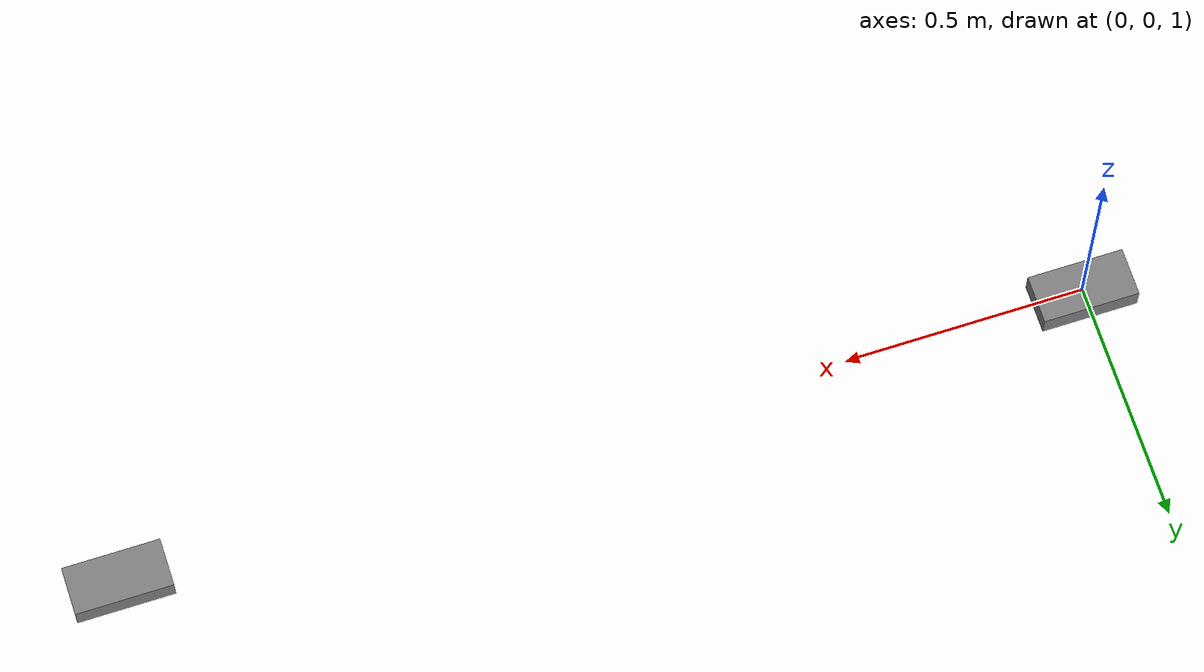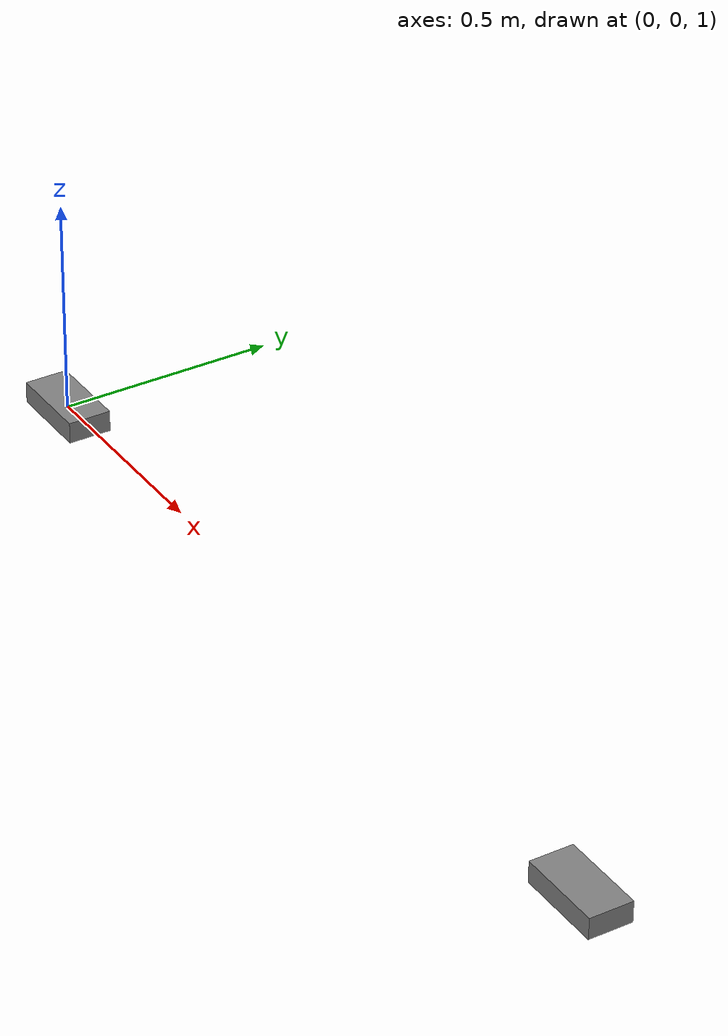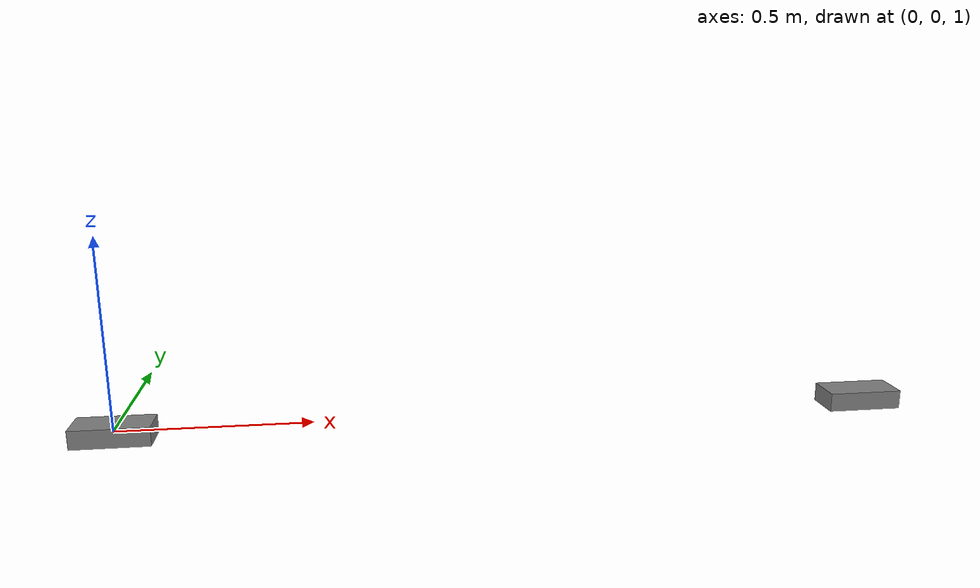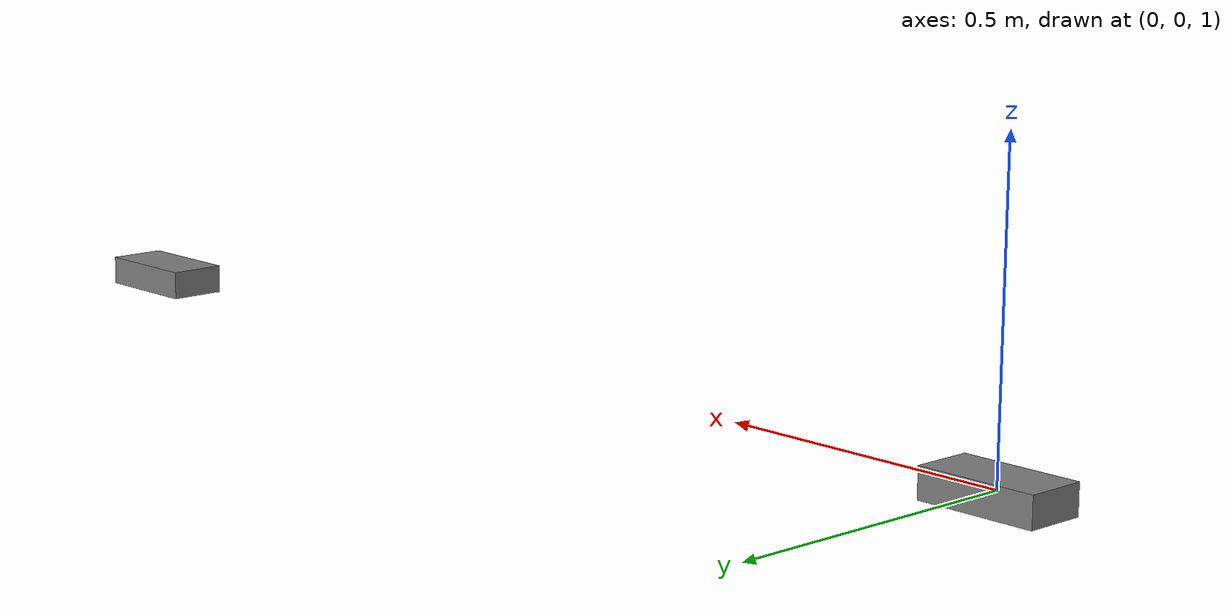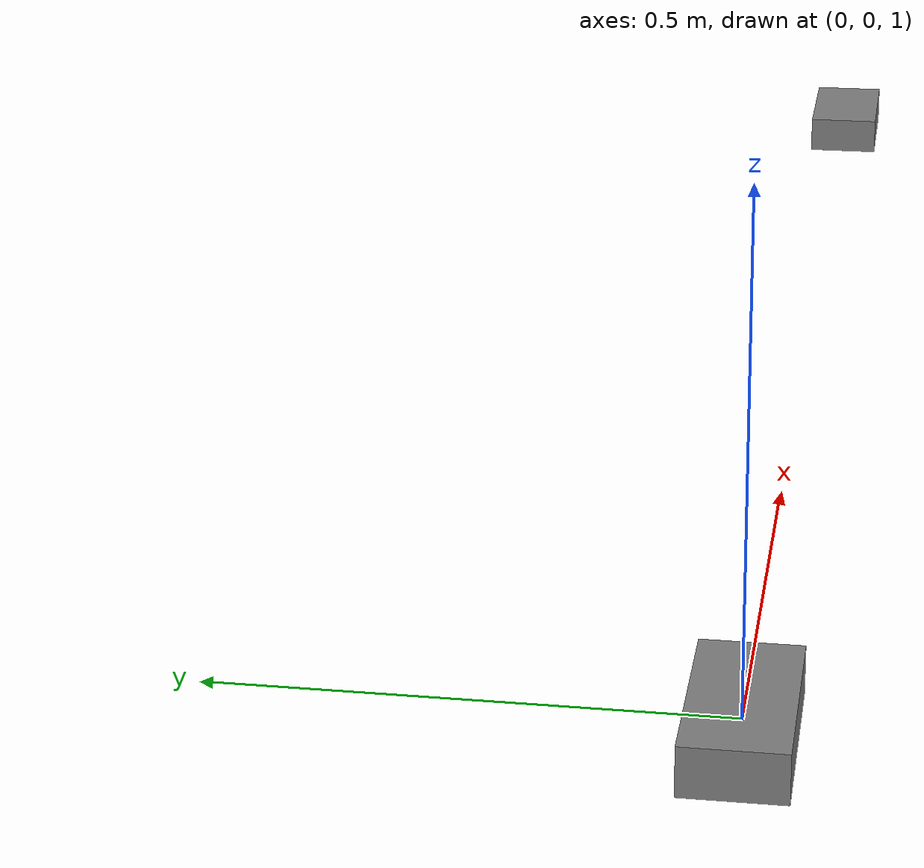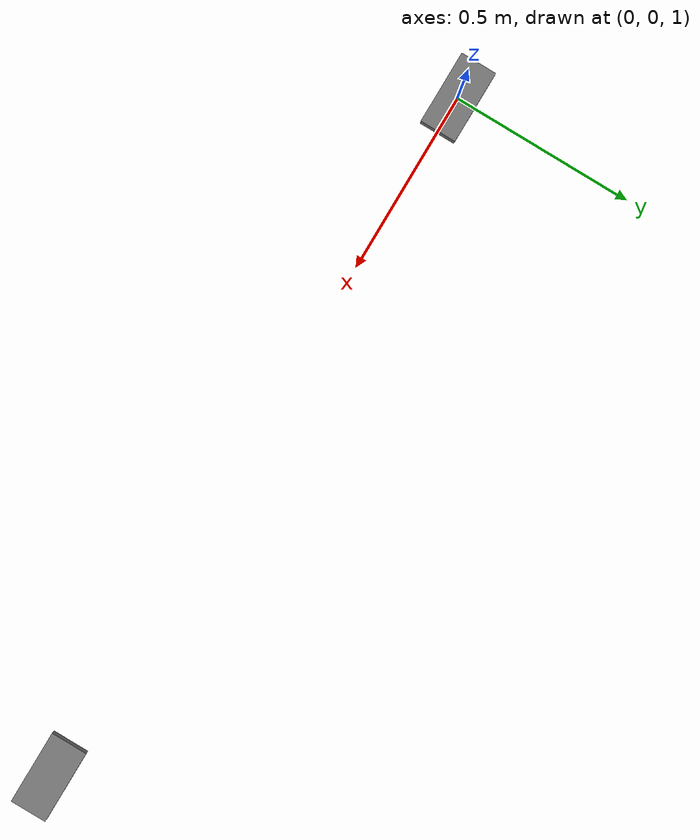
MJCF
<mujoco model="fluid_sleep_test">
            <option density="1.2" viscosity="0.001" timestep="0.002">
                <flag sleep="enable"/>
            </option>
            <worldbody>
                <body name="awake_body" pos="0 0 1">
                    <freejoint/>
                    <geom type="box" size="0.1 0.05 0.025" mass="1.0"
                          contype="0" conaffinity="0"/>
                </body>
                <body name="sleeping_body" pos="2 0 1" sleep="init">
                    <freejoint/>
                    <geom type="box" size="0.1 0.05 0.025" mass="1.0"
                          contype="0" conaffinity="0"/>
                </body>
            </worldbody>
        </mujoco>
